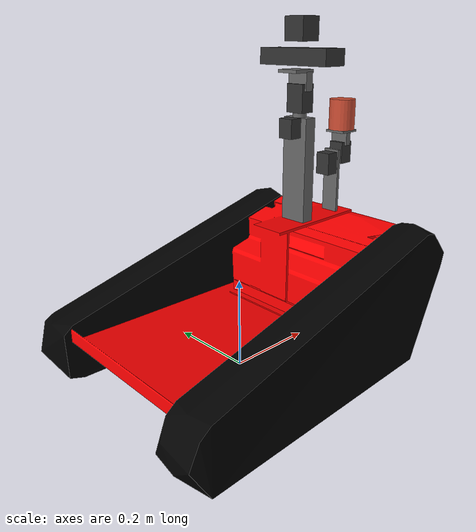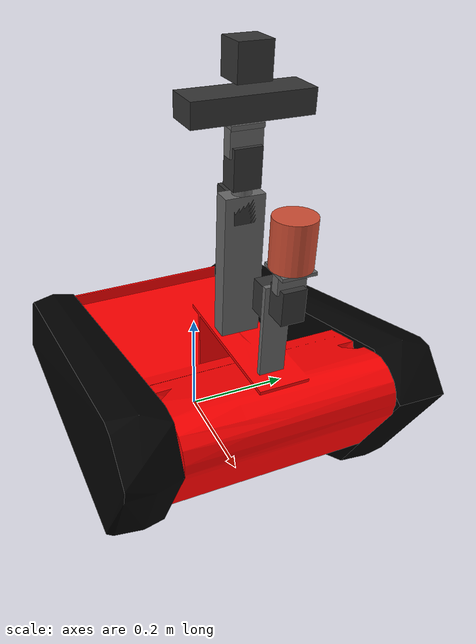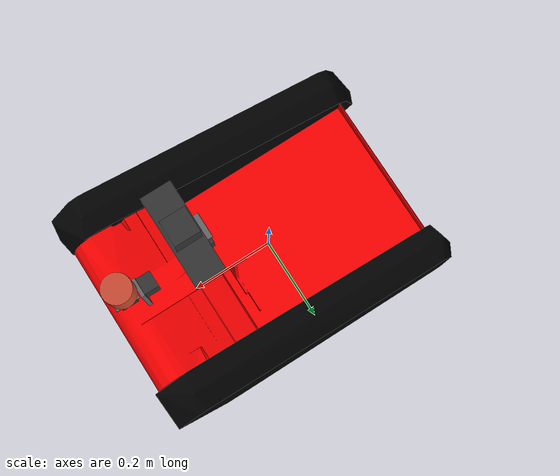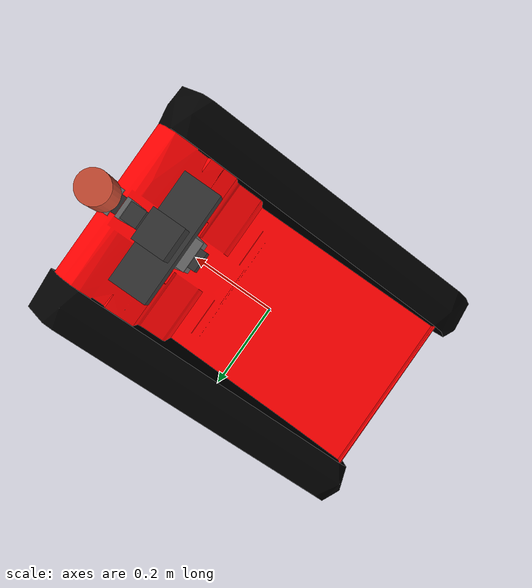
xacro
<?xml version="1.0"?>
<robot xmlns:xacro="http://ros.org/wiki/xacro" name="tedusar_wowbagger">

<!--Element Base -->
<include filename="$(find tedusar_mesa_element)/urdf/mesa_element.urdf.xacro" />

<!--Laser Alignment -->
<include filename="$(find tedusar_laser_alignment)/urdf/tedusar_laser_alignment.urdf" />

<joint name="base_to_laser_alignment" type="fixed">
        <parent link="base_link" />
        <child link="la_base_link" />
        <origin xyz="0.30 0 0.19" rpy="0 0 0" />
</joint>

<!--Sensor Head -->
<include filename="$(find tedusar_sensor_head)/urdf/tedusar_sensor_head.urdf" />
<joint name="base_to_sensor_head" type="fixed">
        <parent link="base_link" />
        <child link="sh_base_link" />
        <origin xyz="0.18 0 0.20" rpy="0 0 0" />
</joint>

</robot>

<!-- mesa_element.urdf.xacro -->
<robot xmlns:xacro="http://ros.org/wiki/xacro"
name="mesa">

<!-- Chassis -->

	<link name="robot_footprint">
	</link>

	<link name="base_link">
		<inertial>
			<mass value="12.0"/>
			<origin xyz="0.0 0.0 0.0"/>
			<inertia ixx="1" ixy="0" ixz="0"
				 iyy="1" iyz="0"
				 izz="1"/>
		</inertial>
		<visual name="base_visual">
			<origin xyz="0.1 0.01 0" rpy="1.5757105 0 0"/>
			<geometry>
				<mesh filename="package://tedusar_mesa_element/meshes/mesa_body.stl" scale="0.001 0.001 0.001"/>
			</geometry>
			<material name="Red">
				<color rgba="1.0 0.0 0.0 1.0"/>
			</material>
		</visual>
		<collision>
			<origin xyz="0.04 0 0.1" rpy="0 0 0"/>
			<geometry>
				<box size="0.70 0.35 0.20"/>
			</geometry>
		</collision>
	</link>

	 <joint name="footprint_base_joint" type="fixed">
		<origin xyz="0 0.0 0.1" rpy="0 0 0"/>
		<parent link="robot_footprint"/>
		<child link="base_link"/>
	 </joint>

	<link name="left_track_link">
		<inertial>
			<mass value="0.01"/> <!-- dummy mass -->
			<origin xyz="0.01 0.01 0.01"/>
			<inertia ixx="1" ixy="0" ixz="0"
				 iyy="1" iyz="0"
				 izz="1"/>
		</inertial>
		<visual name="base_visual">
			<origin xyz="0.1 0.01 0" rpy="1.5757105 0 0"/>
			<geometry>
				<mesh filename="package://tedusar_mesa_element/meshes/mesa_left_track.stl" scale="0.001 0.001 0.001"/>
			</geometry>
			<material name="Black">
				<color rgba="0.0 0.0 0.0 1.0"/>
			</material>
		</visual>
		<collision>
			<origin xyz="0.03 0.235 0.055" rpy="0 0 0"/>
			<geometry>
				<box size="0.75 0.1 0.31"/>
			</geometry>
		</collision>
	</link>

	 <joint name="left_track_base_joint" type="fixed">
		<origin xyz="0 0.0 0.0" rpy="0 0 0"/>
		<parent link="base_link"/>
		<child link="left_track_link"/>
	 </joint>

	<link name="right_track_link">
		<inertial>
			<mass value="0.01"/> <!-- dummy mass -->
			<origin xyz="0.01 0.01 0.01"/>
			<inertia ixx="1" ixy="0" ixz="0"
				 iyy="1" iyz="0"
				 izz="1"/>
		</inertial>
		<visual name="base_visual">
			<origin xyz="0.1 0.01 0" rpy="1.5757105 0 0"/>
			<geometry>
				<mesh filename="package://tedusar_mesa_element/meshes/mesa_right_track.stl" scale="0.001 0.001 0.001"/>
			</geometry>
			<material name="Black">
				<color rgba="0.0 0.0 0.0 1.0"/>
			</material>
		</visual>
		<collision>
			<origin xyz="0.03 -0.235 0.055" rpy="0 0 0"/>
			<geometry>
				<box size="0.75 0.1 0.31"/>
			</geometry>
		</collision>
	</link>

	 <joint name="right_track_base_joint" type="fixed">
		<origin xyz="0 0.0 0.0" rpy="0 0 0"/>
		<parent link="base_link"/>
		<child link="right_track_link"/>
	 </joint>

</robot>

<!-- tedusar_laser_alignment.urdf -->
<robot name="tedusar_laser_alignment">

    <link name="la_base_link" >
        <visual>
            <geometry>
                <box size="0.008 0.04 0.15"/>
            </geometry>
            <material name="light_gray">
                <color rgba="0.4 0.4 0.4 1.0"/>
            </material>
            <origin rpy="0 0 0" xyz="0 0 0.08"/>
        </visual>
        <collision>
            <geometry>
                <box size="0.008 0.04 0.15"/>
            </geometry>
            <material name="light_gray">
                <color rgba="0.4 0.4 0.4 1.0"/>
            </material>
            <origin rpy="0 0 0" xyz="0 0 0.08"/>
        </collision>
    </link>

    <link name="la_servo1" >
        <visual>
            <geometry>
                <box size="0.035 0.035 0.05"/>
            </geometry>
            <material name="gray">
                <color rgba="0.2 0.2 0.2 1.0"/>
            </material>
            <origin rpy="0 0 0" xyz="-0.0175 0 -0.01"/>
        </visual>
        <collision>
            <geometry>
                <box size="0.035 0.035 0.05"/>
            </geometry>
            <material name="gray">
                <color rgba="0.2 0.2 0.2 1.0"/>
            </material>
            <origin rpy="0 0 0" xyz="-0.0175 0 -0.01"/>

        </collision>
    </link>

    <link name="la_servo1_roll" />
    <link name="la_servo2" >
        <visual>
            <geometry>
                <box size="0.035 0.035 0.05"/>
            </geometry>
            <material name="gray"/>
            <origin rpy="0 0 0" xyz="0 0 -0.02"/>
        </visual>
        <collision>
            <geometry>
                <box size="0.035 0.035 0.05"/>
            </geometry>
            <material name="gray"/>
            <origin rpy="0 0 0" xyz="0 0 -0.02"/>
        </collision>
    </link>

    <link name="la_servo2_pitch" >
        <visual>
            <geometry>
                <box size="0.043 0.015 0.045"/>
            </geometry>
            <material name="light_gray"/>
            <origin rpy="0 0 0" xyz="0 0 0.02"/>
        </visual>
        <collision>
            <geometry>
                <box size="0.043 0.015 0.045"/>
            </geometry>
            <material name="light_gray"/>
            <origin rpy="0 0 0" xyz="0 0 0.02"/>
        </collision>
    </link>

    <link name="la_platform" >
        <visual>
            <geometry>
                <box size="0.050 0.050 0.005"/>
            </geometry>
            <material name="light_gray"/>
            <origin rpy="0 0 0" xyz="0 0 0.01"/>
        </visual>
        <collision>
            <geometry>
                <box size="0.050 0.050 0.005"/>
            </geometry>
            <material name="light_gray"/>
            <origin rpy="0 0 0" xyz="0 0 0.01"/>
        </collision>
    </link>

    <link name="la_laser" >
        <visual>
            <geometry>
                <cylinder length="0.07" radius="0.03"/>
            </geometry>
            <material name="red">
                <color rgba="0.8 0.3 0.2 1.0"/>
            </material>
            <origin rpy="0 0 0" xyz="0 0 0.018"/>
        </visual>
        <collision>
            <geometry>
                <cylinder length="0.07" radius="0.03"/>
            </geometry>
            <material name="red">
                <color rgba="0.8 0.3 0.2 1.0"/>
            </material>
            <origin rpy="0 0 0" xyz="0 0 0.018"/>
        </collision>
    </link>

    <joint name="la_base_to_servo1" type="fixed">
        <parent link="la_base_link"/>
        <child link="la_servo1"/>
        <origin xyz="0 0 0.135" rpy="0 0 0"/>
    </joint>

    <joint name="la_roll_joint" type="continuous">
        <parent link="la_servo1"/>
        <child link="la_servo1_roll"/>
        <origin xyz="0 0 0" rpy="0 0 0"/>
    </joint>

    <joint name="la_servo1_roll_to_servo2" type="fixed">
        <parent link="la_servo1_roll"/>
        <child link="la_servo2"/>
        <origin xyz="0.03 0 0.03" rpy="0 0 -1.570796"/>
    </joint>

    <joint name="la_pitch_joint" type="continuous">
        <parent link="la_servo2"/>
        <child link="la_servo2_pitch"/>
        <origin xyz="0 0 0" rpy="0 0 0"/>
    </joint>

    <joint name="la_servo2_pitch_to_platform" type="fixed">
        <parent link="la_servo2_pitch"/>
        <child link="la_platform"/>
        <origin xyz="0 0 0.02" rpy="0 0 1.570796"/>
    </joint>

    <joint name="la_platform_to_laser" type="fixed">
        <parent link="la_platform"/>
        <child link="la_laser"/>
        <origin xyz="0 0 0.03" rpy="0 0 0"/>
    </joint>

</robot>

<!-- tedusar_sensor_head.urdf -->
<robot name="tedusar_sensor_head">

    <link name="sh_base_link" >
        <visual>
            <geometry>
                <box size="0.03 0.063 0.23"/>
            </geometry>
            <material name="light_gray">
                <color rgba="0.4 0.4 0.4 1.0"/>
            </material>
            <origin rpy="0 0 0" xyz="0 0 0.115"/>
        </visual>
        <collision>
            <geometry>
                <box size="0.03 0.063 0.23"/>
            </geometry>
            <material name="light_gray">
                <color rgba="0.4 0.4 0.4 1.0"/>
            </material>
            <origin rpy="0 0 0" xyz="0 0 0.115"/>
        </collision>
    </link>

    <link name="sh_servo1" >
        <visual>
            <geometry>
                <box size="0.042 0.035 0.06"/>
            </geometry>
            <material name="gray">
                <color rgba="0.2 0.2 0.2 1.0"/>
            </material>
            <origin xyz="-0.021 0 0.015" rpy="0 0 0"/>
        </visual>
        <collision>
            <geometry>
                <box size="0.042 0.035 0.06"/>
            </geometry>
            <material name="gray">
                <color rgba="0.2 0.2 0.2 1.0"/>
            </material>
            <origin xyz="-0.021 0 0.015" rpy="0 0 0"/>
        </collision>
    </link>

    <link name="sh_servo1_yaw" >
        <visual>
            <geometry>
                <cylinder length="0.02" radius="0.015"/>
            </geometry>
            <material name="light_gray"/>
            <origin rpy="0 -1.570796 0" xyz="0.01 0 0"/>
        </visual>
        <collision>
            <geometry>
                <cylinder length="0.02" radius="0.015"/>
            </geometry>
            <material name="light_gray"/>
            <origin rpy="0 -1.570796 0" xyz="0.01 0 0"/>
        </collision>
    </link>

    <link name="sh_servo2" >
        <visual>
            <geometry>
                <box size="0.043 0.035 0.06"/>
            </geometry>
            <material name="gray">
                <color rgba="0.2 0.2 0.2 1.0"/>
            </material>
            <origin xyz="0 0 -0.015" rpy="0 0 0"/>
        </visual>
        <collision>
            <geometry>
                <box size="0.043 0.035 0.06"/>
            </geometry>
            <material name="gray">
                <color rgba="0.2 0.2 0.2 1.0"/>
            </material>
            <origin xyz="0 0 -0.015" rpy="0 0 0"/>
        </collision>
    </link>

    <link name="sh_servo2_pitch" >
        <visual>
            <geometry>
                <box size="0.05 0.02 0.04"/>
            </geometry>
            <material name="light_gray"/>
            <origin rpy="0 0 0" xyz="0 0 0.02"/>
        </visual>
        <collision>
            <geometry>
                <box size="0.05 0.02 0.04"/>
            </geometry>
            <material name="light_gray"/>
            <origin rpy="0 0 0" xyz="0 0 0.02"/>
        </collision>
    </link>

    <link name="sh_platform" >
        <visual>
            <geometry>
                <box size="0.055 0.05 0.007"/>
            </geometry>
            <material name="light_gray"/>
            <origin rpy="0 0 0" xyz="-0.015 0 -0.0035"/>
        </visual>
        <collision>
            <geometry>
                <box size="0.055 0.05 0.007"/>
            </geometry>
            <material name="light_gray"/>
            <origin rpy="0 0 0" xyz="-0.015 0 -0.0035"/>
        </collision>
    </link>

    <link name="sh_kinect" >
        <visual>
            <geometry>
                <box size="0.06 0.18 0.035"/>
            </geometry>
            <material name="gray"/>
            <origin rpy="0 0 0" xyz="0 0 0"/>
        </visual>
        <collision>
            <geometry>
                <box size="0.06 0.18 0.035"/>
            </geometry>
            <geometry>
                <box size="0.06 0.18 0.035"/>
            </geometry>
            <material name="gray"/>
            <origin rpy="0 0 0" xyz="0 0 0"/>
        </collision>
    </link>

    <link name="sh_thermal_camera" >
        <visual>
            <geometry>
                <box size="0.05 0.05 0.05"/>
            </geometry>
            <material name="gray"/>
            <origin rpy="0 0 0" xyz="0 0 0"/>
        </visual>
        <collision>
            <geometry>
                <box size="0.050 0.050 0.05"/>
            </geometry>
            <material name="gray"/>
            <origin rpy="0 0 0" xyz="0 0 0"/>
        </collision>
    </link>

    <joint name="sh_base_to_servo1" type="fixed">
        <parent link="sh_base_link"/>
        <child link="sh_servo1"/>
        <origin xyz="0 0 0.23" rpy="0 -1.570796 0"/>
    </joint>

    <joint name="sh_yaw_joint" type="continuous">
        <parent link="sh_servo1"/>
        <child link="sh_servo1_yaw"/>
        <origin xyz="0 0 0" rpy="0 0 0"/>
    </joint>

    <joint name="sh_servo1_yaw_to_servo2" type="fixed">
        <parent link="sh_servo1_yaw"/>
        <child link="sh_servo2"/>
        <origin xyz="0.055 0 0" rpy="-1.570796 0 -1.570796"/>
    </joint>

    <joint name="sh_pitch_joint" type="continuous">
        <parent link="sh_servo2"/>
        <child link="sh_servo2_pitch"/>
        <origin xyz="0 0 0" rpy="0 0 0"/>
    </joint>

    <joint name="sh_servo2_pitch_to_platform" type="fixed">
        <parent link="sh_servo2_pitch"/>
        <child link="sh_platform"/>
        <origin xyz="0 0 0.045" rpy="0 0 1.570796"/>
    </joint>

    <joint name="sh_platform_to_kinect" type="fixed">
        <parent link="sh_platform"/>
        <child link="sh_kinect"/>
        <origin xyz="0 0 0.025" rpy="0 0 0"/>
    </joint>

    <joint name="sh_platform_to_thermal_camera" type="fixed">
        <parent link="sh_platform"/>
        <child link="sh_thermal_camera"/>
        <origin xyz="0 0 0.08" rpy="0 0 0"/>
    </joint>

</robot>
